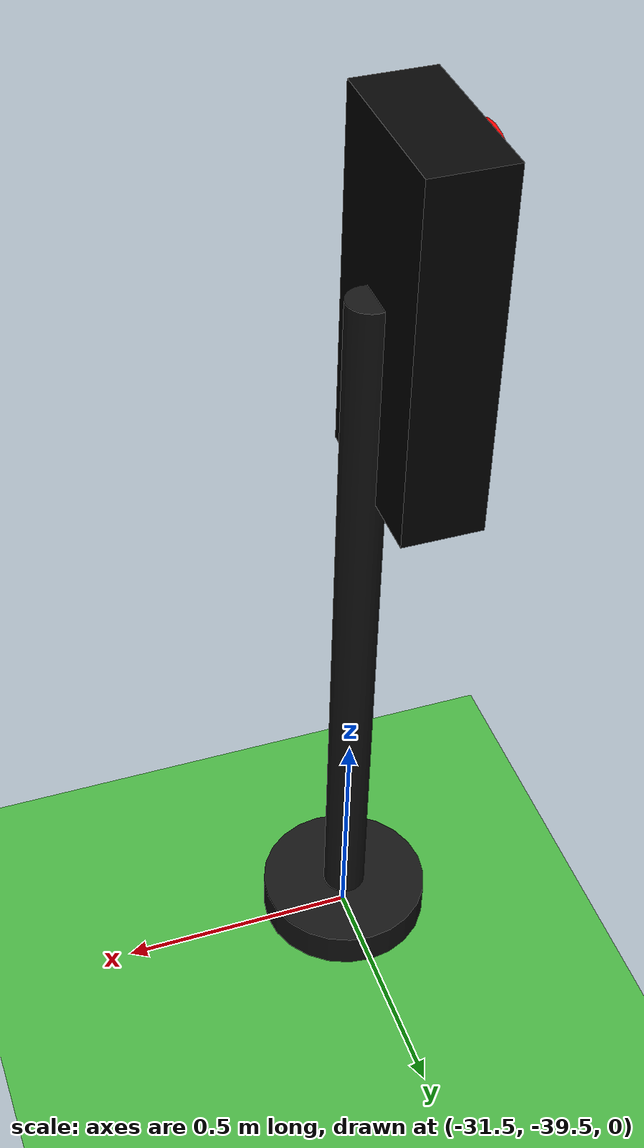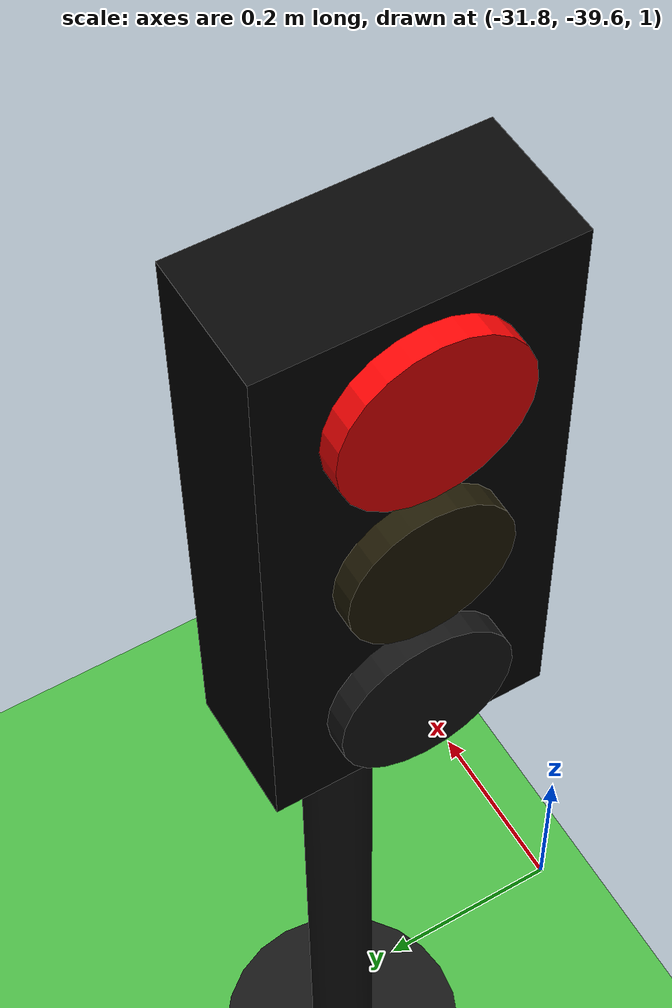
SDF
<sdf version="1.10">
 <world name="city_second">
  <model name="ground_plane">
   <static>true</static>
   <link name="link">
    <collision name="collision">
     <geometry><plane><normal>0 0 1</normal><size>300 300</size></plane></geometry>
    </collision>
    <visual name="visual">
     <geometry><plane><normal>0 0 1</normal><size>300 300</size></plane></geometry>
     <material>
      <ambient>0.280000001 0.689999998 0.25999999 1</ambient>
      <diffuse>0.280000001 0.689999998 0.25999999 1</diffuse>
      <specular>0.0299999993 0.0299999993 0.0299999993 1</specular>
     </material>
    </visual>
    <inertial>
     <mass>1</mass>
     <inertia><ixx>1</ixx><ixy>0</ixy><ixz>0</ixz><iyy>1</iyy><iyz>0</iyz><izz>1</izz></inertia>
    </inertial>
   </link>
  </model>
  <model name="simple_traffic_light_red_west">
   <static>true</static>
   <pose>-31.5 -39.5 0 0 0 1.5708</pose>
   <link name="base">
    <pose>0 0 0.040000000000000001 0 0 0</pose>
    <collision name="collision">
     <geometry>
      <cylinder><radius>0.17999999999999999</radius><length>0.080000000000000002</length></cylinder>
     </geometry>
    </collision>
    <visual name="visual">
     <geometry>
      <cylinder><radius>0.17999999999999999</radius><length>0.080000000000000002</length></cylinder>
     </geometry>
     <material>
      <ambient>0.0799999982 0.0799999982 0.0799999982 1</ambient>
      <diffuse>0.0799999982 0.0799999982 0.0799999982 1</diffuse>
      <specular>0.150000006 0.150000006 0.150000006 1</specular>
      <emissive>0 0 0 1</emissive>
     </material>
    </visual>
    <inertial>
     <mass>1</mass>
     <inertia><ixx>1</ixx><ixy>0</ixy><ixz>0</ixz><iyy>1</iyy><iyz>0</iyz><izz>1</izz></inertia>
    </inertial>
   </link>
   <link name="pole">
    <pose>0 0 0.80000000000000004 0 0 0</pose>
    <collision name="collision">
     <geometry>
      <cylinder><radius>0.044999999999999998</radius><length>1.6000000000000001</length></cylinder>
     </geometry>
    </collision>
    <visual name="visual">
     <geometry>
      <cylinder><radius>0.044999999999999998</radius><length>1.6000000000000001</length></cylinder>
     </geometry>
     <material>
      <ambient>0.0799999982 0.0799999982 0.0799999982 1</ambient>
      <diffuse>0.0799999982 0.0799999982 0.0799999982 1</diffuse>
      <specular>0.150000006 0.150000006 0.150000006 1</specular>
      <emissive>0 0 0 1</emissive>
     </material>
    </visual>
    <inertial>
     <mass>1</mass>
     <inertia><ixx>1</ixx><ixy>0</ixy><ixz>0</ixz><iyy>1</iyy><iyz>0</iyz><izz>1</izz></inertia>
    </inertial>
   </link>
   <link name="signal_box">
    <pose>-1.4210899999999999e-14 0.089999999999999997 1.55 0 0 0</pose>
    <collision name="collision">
     <geometry><box><size>0.34000000000000002 0.16 0.71999999999999997</size></box></geometry>
    </collision>
    <visual name="visual">
     <geometry><box><size>0.34000000000000002 0.16 0.71999999999999997</size></box></geometry>
     <material>
      <ambient>0.0199999996 0.0199999996 0.0199999996 1</ambient>
      <diffuse>0.0199999996 0.0199999996 0.0199999996 1</diffuse>
      <specular>0.150000006 0.150000006 0.150000006 1</specular>
      <emissive>0 0 0 1</emissive>
     </material>
    </visual>
    <inertial>
     <mass>1</mass>
     <inertia><ixx>1</ixx><ixy>0</ixy><ixz>0</ixz><iyy>1</iyy><iyz>0</iyz><izz>1</izz></inertia>
    </inertial>
   </link>
   <link name="red_lens">
    <pose>-7.10543e-15 0.18099999999999999 1.78 1.5708 -7.8504600000000028e-17 -7.8504600000000004e-17</pose>
    <collision name="collision">
     <geometry><cylinder><radius>0.105</radius><length>0.035000000000000003</length></cylinder></geometry>
    </collision>
    <visual name="visual">
     <geometry><cylinder><radius>0.105</radius><length>0.035000000000000003</length></cylinder></geometry>
     <material>
      <ambient>1 0.0199999996 0.0199999996 1</ambient>
      <diffuse>1 0.0199999996 0.0199999996 1</diffuse>
      <specular>0.150000006 0.150000006 0.150000006 1</specular>
      <emissive>1 0.0199999996 0.0199999996 1</emissive>
     </material>
    </visual>
    <inertial>
     <mass>1</mass>
     <inertia><ixx>1</ixx><ixy>0</ixy><ixz>0</ixz><iyy>1</iyy><iyz>0</iyz><izz>1</izz></inertia>
    </inertial>
   </link>
   <link name="yellow_lens">
    <pose>-1.4210899999999999e-14 0.182 1.55 1.5708 -7.8504600000000028e-17 -7.8504600000000004e-17</pose>
    <collision name="collision">
     <geometry>
      <cylinder><radius>0.095000000000000001</radius><length>0.035000000000000003</length></cylinder>
     </geometry>
    </collision>
    <visual name="visual">
     <geometry>
      <cylinder><radius>0.095000000000000001</radius><length>0.035000000000000003</length></cylinder>
     </geometry>
     <material>
      <ambient>0.119999997 0.100000001 0.0199999996 1</ambient>
      <diffuse>0.119999997 0.100000001 0.0199999996 1</diffuse>
      <specular>0.150000006 0.150000006 0.150000006 1</specular>
      <emissive>0 0 0 1</emissive>
     </material>
    </visual>
    <inertial>
     <mass>1</mass>
     <inertia><ixx>1</ixx><ixy>0</ixy><ixz>0</ixz><iyy>1</iyy><iyz>0</iyz><izz>1</izz></inertia>
    </inertial>
   </link>
   <link name="green_lens">
    <pose>0 0.183 1.3200000000000001 1.5708 -7.8504600000000028e-17 -7.8504600000000004e-17</pose>
    <collision name="collision">
     <geometry><cylinder><radius>0.105</radius><length>0.035000000000000003</length></cylinder></geometry>
    </collision>
    <visual name="visual">
     <geometry><cylinder><radius>0.105</radius><length>0.035000000000000003</length></cylinder></geometry>
     <material>
      <ambient>0.0799999982 0.0799999982 0.0799999982 1</ambient>
      <diffuse>0.0799999982 0.0799999982 0.0799999982 1</diffuse>
      <specular>0.150000006 0.150000006 0.150000006 1</specular>
      <emissive>0 0 0 1</emissive>
     </material>
    </visual>
    <inertial>
     <mass>1</mass>
     <inertia><ixx>1</ixx><ixy>0</ixy><ixz>0</ixz><iyy>1</iyy><iyz>0</iyz><izz>1</izz></inertia>
    </inertial>
   </link>
   <light name="red_glow" type="point">
    <pose>0 0.28 1.78 0 0 0</pose>
    <diffuse>1 0.02 0.02 1</diffuse>
    <specular>1 0.02 0.02 1</specular>
    <attenuation>
     <range>3.0</range>
     <constant>0.8</constant>
     <linear>0.15</linear>
     <quadratic>0.02</quadratic>
    </attenuation>
    <cast_shadows>false</cast_shadows>
   </light>
  </model>
 </world>
</sdf>
